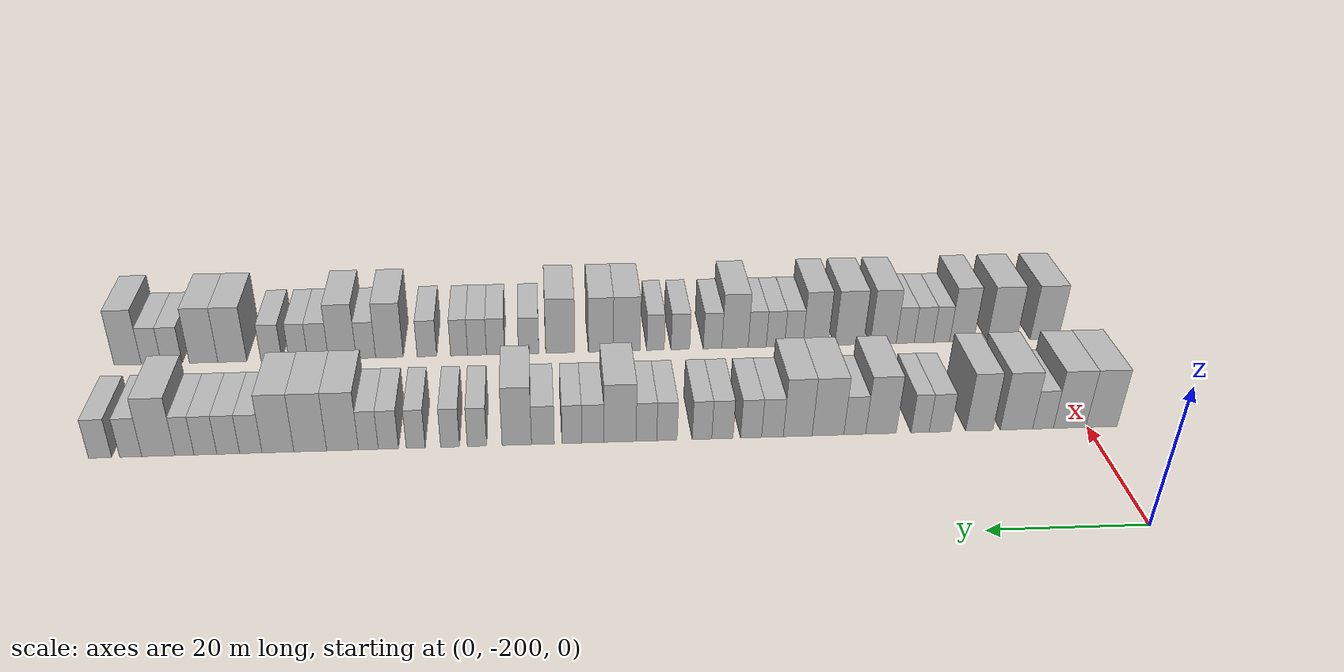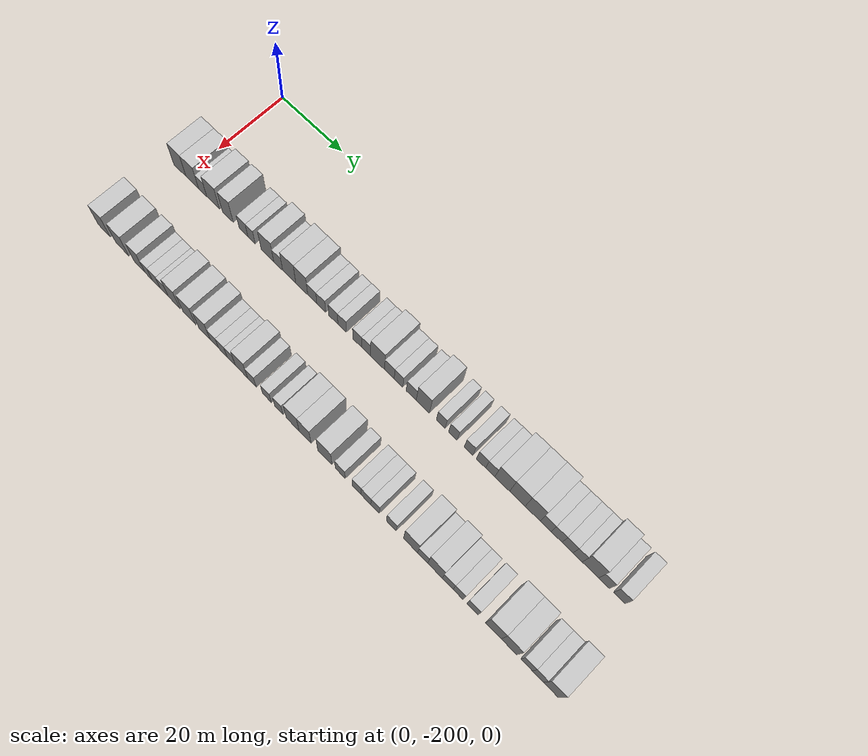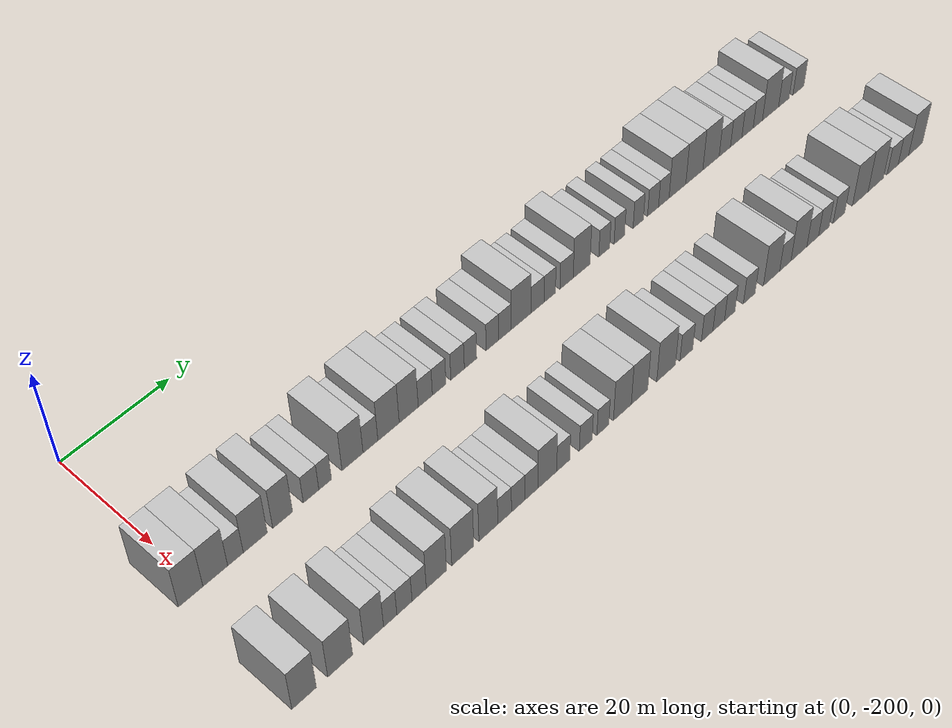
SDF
<sdf version="1.6">
 <world name="default">
  <model name="building_1">
   <static>1</static>
   <pose>25.0000 -201.8556 0 0.000000 0.000000 0.000000</pose>
   <link name="link">
    <pose>0 0 4.50 0 0 0</pose>
    <collision name="collision"><geometry><box><size>10.0000 4.2888 9.0000</size></box></geometry></collision>
    <visual name="visual">
     <cast_shadows>0</cast_shadows>
     <geometry><box><size>10.0000 4.2888 9.0000</size></box></geometry>
     <material>
      <script>
       <uri>model://HANNAS_wall/materials/scripts</uri>
       <uri>model://HANNAS_wall/materials/textures</uri>
       <name>vrc/HANNAS_wall</name>
      </script>
     </material>
    </visual>
   </link>
  </model>
  <model name="building_2">
   <static>1</static>
   <pose>25.0000 -197.5242 0 0.000000 0.000000 0.000000</pose>
   <link name="link">
    <pose>0 0 4.50 0 0 0</pose>
    <collision name="collision"><geometry><box><size>10.0000 4.3739 9.0000</size></box></geometry></collision>
    <visual name="visual">
     <cast_shadows>0</cast_shadows>
     <geometry><box><size>10.0000 4.3739 9.0000</size></box></geometry>
     <material>
      <script>
       <uri>model://HANNAS_wall/materials/scripts</uri>
       <uri>model://HANNAS_wall/materials/textures</uri>
       <name>vrc/HANNAS_wall</name>
      </script>
     </material>
    </visual>
   </link>
  </model>
  <model name="building_3">
   <static>1</static>
   <pose>25.0000 -193.9371 0 0.000000 0.000000 0.000000</pose>
   <link name="link">
    <pose>0 0 3.00 0 0 0</pose>
    <collision name="collision"><geometry><box><size>10.0000 2.8003 6.0000</size></box></geometry></collision>
    <visual name="visual">
     <cast_shadows>0</cast_shadows>
     <geometry><box><size>10.0000 2.8003 6.0000</size></box></geometry>
     <material>
      <script>
       <uri>model://HANNAS_wall/materials/scripts</uri>
       <uri>model://HANNAS_wall/materials/textures</uri>
       <name>vrc/HANNAS_wall</name>
      </script>
     </material>
    </visual>
   </link>
  </model>
  <model name="building_4">
   <static>1</static>
   <pose>25.0000 -190.3591 0 0.000000 0.000000 0.000000</pose>
   <link name="link">
    <pose>0 0 4.50 0 0 0</pose>
    <collision name="collision"><geometry><box><size>10.0000 4.3556 9.0000</size></box></geometry></collision>
    <visual name="visual">
     <cast_shadows>0</cast_shadows>
     <geometry><box><size>10.0000 4.3556 9.0000</size></box></geometry>
     <material>
      <script>
       <uri>model://HANNAS_wall/materials/scripts</uri>
       <uri>model://HANNAS_wall/materials/textures</uri>
       <name>vrc/HANNAS_wall</name>
      </script>
     </material>
    </visual>
   </link>
  </model>
  <model name="building_5">
   <static>1</static>
   <pose>25.0000 -185.3532 0 0.000000 0.000000 0.000000</pose>
   <link name="link">
    <pose>0 0 4.50 0 0 0</pose>
    <collision name="collision"><geometry><box><size>10.0000 3.6562 9.0000</size></box></geometry></collision>
    <visual name="visual">
     <cast_shadows>0</cast_shadows>
     <geometry><box><size>10.0000 3.6562 9.0000</size></box></geometry>
     <material>
      <script>
       <uri>model://HANNAS_wall/materials/scripts</uri>
       <uri>model://HANNAS_wall/materials/textures</uri>
       <name>vrc/HANNAS_wall</name>
      </script>
     </material>
    </visual>
   </link>
  </model>
  <model name="building_6">
   <static>1</static>
   <pose>25.0000 -180.0597 0 0.000000 0.000000 0.000000</pose>
   <link name="link">
    <pose>0 0 3.00 0 0 0</pose>
    <collision name="collision"><geometry><box><size>10.0000 2.9308 6.0000</size></box></geometry></collision>
    <visual name="visual">
     <cast_shadows>0</cast_shadows>
     <geometry><box><size>10.0000 2.9308 6.0000</size></box></geometry>
     <material>
      <script>
       <uri>model://HANNAS_wall/materials/scripts</uri>
       <uri>model://HANNAS_wall/materials/textures</uri>
       <name>vrc/HANNAS_wall</name>
      </script>
     </material>
    </visual>
   </link>
  </model>
  <model name="building_7">
   <static>1</static>
   <pose>25.0000 -177.3900 0 0.000000 0.000000 0.000000</pose>
   <link name="link">
    <pose>0 0 3.00 0 0 0</pose>
    <collision name="collision"><geometry><box><size>10.0000 2.4087 6.0000</size></box></geometry></collision>
    <visual name="visual">
     <cast_shadows>0</cast_shadows>
     <geometry><box><size>10.0000 2.4087 6.0000</size></box></geometry>
     <material>
      <script>
       <uri>model://HANNAS_wall/materials/scripts</uri>
       <uri>model://HANNAS_wall/materials/textures</uri>
       <name>vrc/HANNAS_wall</name>
      </script>
     </material>
    </visual>
   </link>
  </model>
  <model name="building_8">
   <static>1</static>
   <pose>25.0000 -172.1442 0 0.000000 0.000000 0.000000</pose>
   <link name="link">
    <pose>0 0 4.50 0 0 0</pose>
    <collision name="collision"><geometry><box><size>10.0000 4.0828 9.0000</size></box></geometry></collision>
    <visual name="visual">
     <cast_shadows>0</cast_shadows>
     <geometry><box><size>10.0000 4.0828 9.0000</size></box></geometry>
     <material>
      <script>
       <uri>model://HANNAS_wall/materials/scripts</uri>
       <uri>model://HANNAS_wall/materials/textures</uri>
       <name>vrc/HANNAS_wall</name>
      </script>
     </material>
    </visual>
   </link>
  </model>
  <model name="building_9">
   <static>1</static>
   <pose>25.0000 -168.6496 0 0.000000 0.000000 0.000000</pose>
   <link name="link">
    <pose>0 0 3.00 0 0 0</pose>
    <collision name="collision"><geometry><box><size>10.0000 2.9065 6.0000</size></box></geometry></collision>
    <visual name="visual">
     <cast_shadows>0</cast_shadows>
     <geometry><box><size>10.0000 2.9065 6.0000</size></box></geometry>
     <material>
      <script>
       <uri>model://HANNAS_wall/materials/scripts</uri>
       <uri>model://HANNAS_wall/materials/textures</uri>
       <name>vrc/HANNAS_wall</name>
      </script>
     </material>
    </visual>
   </link>
  </model>
  <model name="building_10">
   <static>1</static>
   <pose>25.0000 -165.0772 0 0.000000 0.000000 0.000000</pose>
   <link name="link">
    <pose>0 0 4.50 0 0 0</pose>
    <collision name="collision"><geometry><box><size>10.0000 4.2381 9.0000</size></box></geometry></collision>
    <visual name="visual">
     <cast_shadows>0</cast_shadows>
     <geometry><box><size>10.0000 4.2381 9.0000</size></box></geometry>
     <material>
      <script>
       <uri>model://HANNAS_wall/materials/scripts</uri>
       <uri>model://HANNAS_wall/materials/textures</uri>
       <name>vrc/HANNAS_wall</name>
      </script>
     </material>
    </visual>
   </link>
  </model>
  <model name="building_11">
   <static>1</static>
   <pose>25.0000 -161.0481 0 0.000000 0.000000 0.000000</pose>
   <link name="link">
    <pose>0 0 4.50 0 0 0</pose>
    <collision name="collision"><geometry><box><size>10.0000 3.8203 9.0000</size></box></geometry></collision>
    <visual name="visual">
     <cast_shadows>0</cast_shadows>
     <geometry><box><size>10.0000 3.8203 9.0000</size></box></geometry>
     <material>
      <script>
       <uri>model://HANNAS_wall/materials/scripts</uri>
       <uri>model://HANNAS_wall/materials/textures</uri>
       <name>vrc/HANNAS_wall</name>
      </script>
     </material>
    </visual>
   </link>
  </model>
  <model name="building_12">
   <static>1</static>
   <pose>25.0000 -157.6958 0 0.000000 0.000000 0.000000</pose>
   <link name="link">
    <pose>0 0 3.00 0 0 0</pose>
    <collision name="collision"><geometry><box><size>10.0000 2.8843 6.0000</size></box></geometry></collision>
    <visual name="visual">
     <cast_shadows>0</cast_shadows>
     <geometry><box><size>10.0000 2.8843 6.0000</size></box></geometry>
     <material>
      <script>
       <uri>model://HANNAS_wall/materials/scripts</uri>
       <uri>model://HANNAS_wall/materials/textures</uri>
       <name>vrc/HANNAS_wall</name>
      </script>
     </material>
    </visual>
   </link>
  </model>
  <model name="building_13">
   <static>1</static>
   <pose>25.0000 -154.8604 0 0.000000 0.000000 0.000000</pose>
   <link name="link">
    <pose>0 0 3.00 0 0 0</pose>
    <collision name="collision"><geometry><box><size>10.0000 2.7866 6.0000</size></box></geometry></collision>
    <visual name="visual">
     <cast_shadows>0</cast_shadows>
     <geometry><box><size>10.0000 2.7866 6.0000</size></box></geometry>
     <material>
      <script>
       <uri>model://HANNAS_wall/materials/scripts</uri>
       <uri>model://HANNAS_wall/materials/textures</uri>
       <name>vrc/HANNAS_wall</name>
      </script>
     </material>
    </visual>
   </link>
  </model>
  <model name="building_14">
   <static>1</static>
   <pose>25.0000 -151.0621 0 0.000000 0.000000 0.000000</pose>
   <link name="link">
    <pose>0 0 3.00 0 0 0</pose>
    <collision name="collision"><geometry><box><size>10.0000 2.8099 6.0000</size></box></geometry></collision>
    <visual name="visual">
     <cast_shadows>0</cast_shadows>
     <geometry><box><size>10.0000 2.8099 6.0000</size></box></geometry>
     <material>
      <script>
       <uri>model://HANNAS_wall/materials/scripts</uri>
       <uri>model://HANNAS_wall/materials/textures</uri>
       <name>vrc/HANNAS_wall</name>
      </script>
     </material>
    </visual>
   </link>
  </model>
  <model name="building_15">
   <static>1</static>
   <pose>25.0000 -148.3622 0 0.000000 0.000000 0.000000</pose>
   <link name="link">
    <pose>0 0 3.00 0 0 0</pose>
    <collision name="collision"><geometry><box><size>10.0000 2.5898 6.0000</size></box></geometry></collision>
    <visual name="visual">
     <cast_shadows>0</cast_shadows>
     <geometry><box><size>10.0000 2.5898 6.0000</size></box></geometry>
     <material>
      <script>
       <uri>model://HANNAS_wall/materials/scripts</uri>
       <uri>model://HANNAS_wall/materials/textures</uri>
       <name>vrc/HANNAS_wall</name>
      </script>
     </material>
    </visual>
   </link>
  </model>
  <model name="building_16">
   <static>1</static>
   <pose>25.0000 -143.7237 0 0.000000 0.000000 0.000000</pose>
   <link name="link">
    <pose>0 0 3.00 0 0 0</pose>
    <collision name="collision"><geometry><box><size>10.0000 2.6872 6.0000</size></box></geometry></collision>
    <visual name="visual">
     <cast_shadows>0</cast_shadows>
     <geometry><box><size>10.0000 2.6872 6.0000</size></box></geometry>
     <material>
      <script>
       <uri>model://HANNAS_wall/materials/scripts</uri>
       <uri>model://HANNAS_wall/materials/textures</uri>
       <name>vrc/HANNAS_wall</name>
      </script>
     </material>
    </visual>
   </link>
  </model>
  <model name="building_17">
   <static>1</static>
   <pose>25.0000 -141.0242 0 0.000000 0.000000 0.000000</pose>
   <link name="link">
    <pose>0 0 3.00 0 0 0</pose>
    <collision name="collision"><geometry><box><size>10.0000 2.7119 6.0000</size></box></geometry></collision>
    <visual name="visual">
     <cast_shadows>0</cast_shadows>
     <geometry><box><size>10.0000 2.7119 6.0000</size></box></geometry>
     <material>
      <script>
       <uri>model://HANNAS_wall/materials/scripts</uri>
       <uri>model://HANNAS_wall/materials/textures</uri>
       <name>vrc/HANNAS_wall</name>
      </script>
     </material>
    </visual>
   </link>
  </model>
  <model name="building_18">
   <static>1</static>
   <pose>25.0000 -137.5453 0 0.000000 0.000000 0.000000</pose>
   <link name="link">
    <pose>0 0 4.50 0 0 0</pose>
    <collision name="collision"><geometry><box><size>10.0000 4.2459 9.0000</size></box></geometry></collision>
    <visual name="visual">
     <cast_shadows>0</cast_shadows>
     <geometry><box><size>10.0000 4.2459 9.0000</size></box></geometry>
     <material>
      <script>
       <uri>model://HANNAS_wall/materials/scripts</uri>
       <uri>model://HANNAS_wall/materials/textures</uri>
       <name>vrc/HANNAS_wall</name>
      </script>
     </material>
    </visual>
   </link>
  </model>
  <model name="building_19">
   <static>1</static>
   <pose>25.0000 -133.9756 0 0.000000 0.000000 0.000000</pose>
   <link name="link">
    <pose>0 0 3.00 0 0 0</pose>
    <collision name="collision"><geometry><box><size>10.0000 2.8935 6.0000</size></box></geometry></collision>
    <visual name="visual">
     <cast_shadows>0</cast_shadows>
     <geometry><box><size>10.0000 2.8935 6.0000</size></box></geometry>
     <material>
      <script>
       <uri>model://HANNAS_wall/materials/scripts</uri>
       <uri>model://HANNAS_wall/materials/textures</uri>
       <name>vrc/HANNAS_wall</name>
      </script>
     </material>
    </visual>
   </link>
  </model>
  <model name="building_20">
   <static>1</static>
   <pose>25.0000 -131.2498 0 0.000000 0.000000 0.000000</pose>
   <link name="link">
    <pose>0 0 3.00 0 0 0</pose>
    <collision name="collision"><geometry><box><size>10.0000 2.5581 6.0000</size></box></geometry></collision>
    <visual name="visual">
     <cast_shadows>0</cast_shadows>
     <geometry><box><size>10.0000 2.5581 6.0000</size></box></geometry>
     <material>
      <script>
       <uri>model://HANNAS_wall/materials/scripts</uri>
       <uri>model://HANNAS_wall/materials/textures</uri>
       <name>vrc/HANNAS_wall</name>
      </script>
     </material>
    </visual>
   </link>
  </model>
  <model name="building_21">
   <static>1</static>
   <pose>25.0000 -127.4787 0 0.000000 0.000000 0.000000</pose>
   <link name="link">
    <pose>0 0 3.00 0 0 0</pose>
    <collision name="collision"><geometry><box><size>10.0000 2.9840 6.0000</size></box></geometry></collision>
    <visual name="visual">
     <cast_shadows>0</cast_shadows>
     <geometry><box><size>10.0000 2.9840 6.0000</size></box></geometry>
     <material>
      <script>
       <uri>model://HANNAS_wall/materials/scripts</uri>
       <uri>model://HANNAS_wall/materials/textures</uri>
       <name>vrc/HANNAS_wall</name>
      </script>
     </material>
    </visual>
   </link>
  </model>
  <model name="building_22">
   <static>1</static>
   <pose>25.0000 -124.0685 0 0.000000 0.000000 0.000000</pose>
   <link name="link">
    <pose>0 0 4.50 0 0 0</pose>
    <collision name="collision"><geometry><box><size>10.0000 3.8363 9.0000</size></box></geometry></collision>
    <visual name="visual">
     <cast_shadows>0</cast_shadows>
     <geometry><box><size>10.0000 3.8363 9.0000</size></box></geometry>
     <material>
      <script>
       <uri>model://HANNAS_wall/materials/scripts</uri>
       <uri>model://HANNAS_wall/materials/textures</uri>
       <name>vrc/HANNAS_wall</name>
      </script>
     </material>
    </visual>
   </link>
  </model>
  <model name="building_23">
   <static>1</static>
   <pose>25.0000 -118.8895 0 0.000000 0.000000 0.000000</pose>
   <link name="link">
    <pose>0 0 3.00 0 0 0</pose>
    <collision name="collision"><geometry><box><size>10.0000 2.5217 6.0000</size></box></geometry></collision>
    <visual name="visual">
     <cast_shadows>0</cast_shadows>
     <geometry><box><size>10.0000 2.5217 6.0000</size></box></geometry>
     <material>
      <script>
       <uri>model://HANNAS_wall/materials/scripts</uri>
       <uri>model://HANNAS_wall/materials/textures</uri>
       <name>vrc/HANNAS_wall</name>
      </script>
     </material>
    </visual>
   </link>
  </model>
  <model name="building_24">
   <static>1</static>
   <pose>25.0000 -115.3926 0 0.000000 0.000000 0.000000</pose>
   <link name="link">
    <pose>0 0 3.00 0 0 0</pose>
    <collision name="collision"><geometry><box><size>10.0000 2.4723 6.0000</size></box></geometry></collision>
    <visual name="visual">
     <cast_shadows>0</cast_shadows>
     <geometry><box><size>10.0000 2.4723 6.0000</size></box></geometry>
     <material>
      <script>
       <uri>model://HANNAS_wall/materials/scripts</uri>
       <uri>model://HANNAS_wall/materials/textures</uri>
       <name>vrc/HANNAS_wall</name>
      </script>
     </material>
    </visual>
   </link>
  </model>
  <model name="building_25">
   <static>1</static>
   <pose>25.0000 -110.9321 0 0.000000 0.000000 0.000000</pose>
   <link name="link">
    <pose>0 0 3.00 0 0 0</pose>
    <collision name="collision"><geometry><box><size>10.0000 2.4486 6.0000</size></box></geometry></collision>
    <visual name="visual">
     <cast_shadows>0</cast_shadows>
     <geometry><box><size>10.0000 2.4486 6.0000</size></box></geometry>
     <material>
      <script>
       <uri>model://HANNAS_wall/materials/scripts</uri>
       <uri>model://HANNAS_wall/materials/textures</uri>
       <name>vrc/HANNAS_wall</name>
      </script>
     </material>
    </visual>
   </link>
  </model>
  <model name="building_26">
   <static>1</static>
   <pose>25.0000 -107.3968 0 0.000000 0.000000 0.000000</pose>
   <link name="link">
    <pose>0 0 3.00 0 0 0</pose>
    <collision name="collision"><geometry><box><size>10.0000 2.6221 6.0000</size></box></geometry></collision>
    <visual name="visual">
     <cast_shadows>0</cast_shadows>
     <geometry><box><size>10.0000 2.6221 6.0000</size></box></geometry>
     <material>
      <script>
       <uri>model://HANNAS_wall/materials/scripts</uri>
       <uri>model://HANNAS_wall/materials/textures</uri>
       <name>vrc/HANNAS_wall</name>
      </script>
     </material>
    </visual>
   </link>
  </model>
  <model name="building_27">
   <static>1</static>
   <pose>25.0000 -104.8134 0 0.000000 0.000000 0.000000</pose>
   <link name="link">
    <pose>0 0 3.00 0 0 0</pose>
    <collision name="collision"><geometry><box><size>10.0000 2.5448 6.0000</size></box></geometry></collision>
    <visual name="visual">
     <cast_shadows>0</cast_shadows>
     <geometry><box><size>10.0000 2.5448 6.0000</size></box></geometry>
     <material>
      <script>
       <uri>model://HANNAS_wall/materials/scripts</uri>
       <uri>model://HANNAS_wall/materials/textures</uri>
       <name>vrc/HANNAS_wall</name>
      </script>
     </material>
    </visual>
   </link>
  </model>
  <model name="building_28">
   <static>1</static>
   <pose>25.0000 -101.4915 0 0.000000 0.000000 0.000000</pose>
   <link name="link">
    <pose>0 0 4.50 0 0 0</pose>
    <collision name="collision"><geometry><box><size>10.0000 4.0988 9.0000</size></box></geometry></collision>
    <visual name="visual">
     <cast_shadows>0</cast_shadows>
     <geometry><box><size>10.0000 4.0988 9.0000</size></box></geometry>
     <material>
      <script>
       <uri>model://HANNAS_wall/materials/scripts</uri>
       <uri>model://HANNAS_wall/materials/textures</uri>
       <name>vrc/HANNAS_wall</name>
      </script>
     </material>
    </visual>
   </link>
  </model>
  <model name="building_29">
   <static>1</static>
   <pose>25.0000 -97.3312 0 0.000000 0.000000 0.000000</pose>
   <link name="link">
    <pose>0 0 4.50 0 0 0</pose>
    <collision name="collision"><geometry><box><size>10.0000 4.2218 9.0000</size></box></geometry></collision>
    <visual name="visual">
     <cast_shadows>0</cast_shadows>
     <geometry><box><size>10.0000 4.2218 9.0000</size></box></geometry>
     <material>
      <script>
       <uri>model://HANNAS_wall/materials/scripts</uri>
       <uri>model://HANNAS_wall/materials/textures</uri>
       <name>vrc/HANNAS_wall</name>
      </script>
     </material>
    </visual>
   </link>
  </model>
  <model name="building_30">
   <static>1</static>
   <pose>25.0000 -93.1748 0 0.000000 0.000000 0.000000</pose>
   <link name="link">
    <pose>0 0 4.50 0 0 0</pose>
    <collision name="collision"><geometry><box><size>10.0000 4.0911 9.0000</size></box></geometry></collision>
    <visual name="visual">
     <cast_shadows>0</cast_shadows>
     <geometry><box><size>10.0000 4.0911 9.0000</size></box></geometry>
     <material>
      <script>
       <uri>model://HANNAS_wall/materials/scripts</uri>
       <uri>model://HANNAS_wall/materials/textures</uri>
       <name>vrc/HANNAS_wall</name>
      </script>
     </material>
    </visual>
   </link>
  </model>
  <model name="building_31">
   <static>1</static>
   <pose>25.0000 -89.6889 0 0.000000 0.000000 0.000000</pose>
   <link name="link">
    <pose>0 0 3.00 0 0 0</pose>
    <collision name="collision"><geometry><box><size>10.0000 2.8806 6.0000</size></box></geometry></collision>
    <visual name="visual">
     <cast_shadows>0</cast_shadows>
     <geometry><box><size>10.0000 2.8806 6.0000</size></box></geometry>
     <material>
      <script>
       <uri>model://HANNAS_wall/materials/scripts</uri>
       <uri>model://HANNAS_wall/materials/textures</uri>
       <name>vrc/HANNAS_wall</name>
      </script>
     </material>
    </visual>
   </link>
  </model>
  <model name="building_32">
   <static>1</static>
   <pose>25.0000 -86.7943 0 0.000000 0.000000 0.000000</pose>
   <link name="link">
    <pose>0 0 3.00 0 0 0</pose>
    <collision name="collision"><geometry><box><size>10.0000 2.9087 6.0000</size></box></geometry></collision>
    <visual name="visual">
     <cast_shadows>0</cast_shadows>
     <geometry><box><size>10.0000 2.9087 6.0000</size></box></geometry>
     <material>
      <script>
       <uri>model://HANNAS_wall/materials/scripts</uri>
       <uri>model://HANNAS_wall/materials/textures</uri>
       <name>vrc/HANNAS_wall</name>
      </script>
     </material>
    </visual>
   </link>
  </model>
  <model name="building_33">
   <static>1</static>
   <pose>25.0000 -83.8854 0 0.000000 0.000000 0.000000</pose>
   <link name="link">
    <pose>0 0 3.00 0 0 0</pose>
    <collision name="collision"><geometry><box><size>10.0000 2.9092 6.0000</size></box></geometry></collision>
    <visual name="visual">
     <cast_shadows>0</cast_shadows>
     <geometry><box><size>10.0000 2.9092 6.0000</size></box></geometry>
     <material>
      <script>
       <uri>model://HANNAS_wall/materials/scripts</uri>
       <uri>model://HANNAS_wall/materials/textures</uri>
       <name>vrc/HANNAS_wall</name>
      </script>
     </material>
    </visual>
   </link>
  </model>
  <model name="building_34">
   <static>1</static>
   <pose>25.0000 -81.2215 0 0.000000 0.000000 0.000000</pose>
   <link name="link">
    <pose>0 0 3.00 0 0 0</pose>
    <collision name="collision"><geometry><box><size>10.0000 2.4186 6.0000</size></box></geometry></collision>
    <visual name="visual">
     <cast_shadows>0</cast_shadows>
     <geometry><box><size>10.0000 2.4186 6.0000</size></box></geometry>
     <material>
      <script>
       <uri>model://HANNAS_wall/materials/scripts</uri>
       <uri>model://HANNAS_wall/materials/textures</uri>
       <name>vrc/HANNAS_wall</name>
      </script>
     </material>
    </visual>
   </link>
  </model>
  <model name="building_35">
   <static>1</static>
   <pose>25.0000 -77.8905 0 0.000000 0.000000 0.000000</pose>
   <link name="link">
    <pose>0 0 4.50 0 0 0</pose>
    <collision name="collision"><geometry><box><size>10.0000 4.2435 9.0000</size></box></geometry></collision>
    <visual name="visual">
     <cast_shadows>0</cast_shadows>
     <geometry><box><size>10.0000 4.2435 9.0000</size></box></geometry>
     <material>
      <script>
       <uri>model://HANNAS_wall/materials/scripts</uri>
       <uri>model://HANNAS_wall/materials/textures</uri>
       <name>vrc/HANNAS_wall</name>
      </script>
     </material>
    </visual>
   </link>
  </model>
  <model name="building_36">
   <static>1</static>
   <pose>25.0000 -74.3643 0 0.000000 0.000000 0.000000</pose>
   <link name="link">
    <pose>0 0 3.00 0 0 0</pose>
    <collision name="collision"><geometry><box><size>10.0000 2.8089 6.0000</size></box></geometry></collision>
    <visual name="visual">
     <cast_shadows>0</cast_shadows>
     <geometry><box><size>10.0000 2.8089 6.0000</size></box></geometry>
     <material>
      <script>
       <uri>model://HANNAS_wall/materials/scripts</uri>
       <uri>model://HANNAS_wall/materials/textures</uri>
       <name>vrc/HANNAS_wall</name>
      </script>
     </material>
    </visual>
   </link>
  </model>
  <model name="building_37">
   <static>1</static>
   <pose>25.0000 -70.4836 0 0.000000 0.000000 0.000000</pose>
   <link name="link">
    <pose>0 0 3.00 0 0 0</pose>
    <collision name="collision"><geometry><box><size>10.0000 2.9524 6.0000</size></box></geometry></collision>
    <visual name="visual">
     <cast_shadows>0</cast_shadows>
     <geometry><box><size>10.0000 2.9524 6.0000</size></box></geometry>
     <material>
      <script>
       <uri>model://HANNAS_wall/materials/scripts</uri>
       <uri>model://HANNAS_wall/materials/textures</uri>
       <name>vrc/HANNAS_wall</name>
      </script>
     </material>
    </visual>
   </link>
  </model>
  <model name="building_109">
   <static>1</static>
   <pose>47.0000 -201.8679 0 0.000000 0.000000 0.000000</pose>
   <link name="link">
    <pose>0 0 4.50 0 0 0</pose>
    <collision name="collision"><geometry><box><size>10.0000 4.2642 9.0000</size></box></geometry></collision>
    <visual name="visual">
     <cast_shadows>0</cast_shadows>
     <geometry><box><size>10.0000 4.2642 9.0000</size></box></geometry>
     <material>
      <script>
       <uri>model://HANNAS_wall/materials/scripts</uri>
       <uri>model://HANNAS_wall/materials/textures</uri>
       <name>vrc/HANNAS_wall</name>
      </script>
     </material>
    </visual>
   </link>
  </model>
  <model name="building_110">
   <static>1</static>
   <pose>47.0000 -195.5158 0 0.000000 0.000000 0.000000</pose>
   <link name="link">
    <pose>0 0 4.50 0 0 0</pose>
    <collision name="collision"><geometry><box><size>10.0000 4.4401 9.0000</size></box></geometry></collision>
    <visual name="visual">
     <cast_shadows>0</cast_shadows>
     <geometry><box><size>10.0000 4.4401 9.0000</size></box></geometry>
     <material>
      <script>
       <uri>model://HANNAS_wall/materials/scripts</uri>
       <uri>model://HANNAS_wall/materials/textures</uri>
       <name>vrc/HANNAS_wall</name>
      </script>
     </material>
    </visual>
   </link>
  </model>
  <model name="building_111">
   <static>1</static>
   <pose>47.0000 -189.4886 0 0.000000 0.000000 0.000000</pose>
   <link name="link">
    <pose>0 0 4.50 0 0 0</pose>
    <collision name="collision"><geometry><box><size>10.0000 3.6141 9.0000</size></box></geometry></collision>
    <visual name="visual">
     <cast_shadows>0</cast_shadows>
     <geometry><box><size>10.0000 3.6141 9.0000</size></box></geometry>
     <material>
      <script>
       <uri>model://HANNAS_wall/materials/scripts</uri>
       <uri>model://HANNAS_wall/materials/textures</uri>
       <name>vrc/HANNAS_wall</name>
      </script>
     </material>
    </visual>
   </link>
  </model>
  <model name="building_112">
   <static>1</static>
   <pose>47.0000 -186.4586 0 0.000000 0.000000 0.000000</pose>
   <link name="link">
    <pose>0 0 3.00 0 0 0</pose>
    <collision name="collision"><geometry><box><size>10.0000 2.4461 6.0000</size></box></geometry></collision>
    <visual name="visual">
     <cast_shadows>0</cast_shadows>
     <geometry><box><size>10.0000 2.4461 6.0000</size></box></geometry>
     <material>
      <script>
       <uri>model://HANNAS_wall/materials/scripts</uri>
       <uri>model://HANNAS_wall/materials/textures</uri>
       <name>vrc/HANNAS_wall</name>
      </script>
     </material>
    </visual>
   </link>
  </model>
  <model name="building_113">
   <static>1</static>
   <pose>47.0000 -183.8167 0 0.000000 0.000000 0.000000</pose>
   <link name="link">
    <pose>0 0 3.00 0 0 0</pose>
    <collision name="collision"><geometry><box><size>10.0000 2.8376 6.0000</size></box></geometry></collision>
    <visual name="visual">
     <cast_shadows>0</cast_shadows>
     <geometry><box><size>10.0000 2.8376 6.0000</size></box></geometry>
     <material>
      <script>
       <uri>model://HANNAS_wall/materials/scripts</uri>
       <uri>model://HANNAS_wall/materials/textures</uri>
       <name>vrc/HANNAS_wall</name>
      </script>
     </material>
    </visual>
   </link>
  </model>
  <model name="building_114">
   <static>1</static>
   <pose>47.0000 -181.0642 0 0.000000 0.000000 0.000000</pose>
   <link name="link">
    <pose>0 0 3.00 0 0 0</pose>
    <collision name="collision"><geometry><box><size>10.0000 2.6674 6.0000</size></box></geometry></collision>
    <visual name="visual">
     <cast_shadows>0</cast_shadows>
     <geometry><box><size>10.0000 2.6674 6.0000</size></box></geometry>
     <material>
      <script>
       <uri>model://HANNAS_wall/materials/scripts</uri>
       <uri>model://HANNAS_wall/materials/textures</uri>
       <name>vrc/HANNAS_wall</name>
      </script>
     </material>
    </visual>
   </link>
  </model>
  <model name="building_115">
   <static>1</static>
   <pose>47.0000 -177.8053 0 0.000000 0.000000 0.000000</pose>
   <link name="link">
    <pose>0 0 4.50 0 0 0</pose>
    <collision name="collision"><geometry><box><size>10.0000 3.8505 9.0000</size></box></geometry></collision>
    <visual name="visual">
     <cast_shadows>0</cast_shadows>
     <geometry><box><size>10.0000 3.8505 9.0000</size></box></geometry>
     <material>
      <script>
       <uri>model://HANNAS_wall/materials/scripts</uri>
       <uri>model://HANNAS_wall/materials/textures</uri>
       <name>vrc/HANNAS_wall</name>
      </script>
     </material>
    </visual>
   </link>
  </model>
  <model name="building_116">
   <static>1</static>
   <pose>47.0000 -172.7529 0 0.000000 0.000000 0.000000</pose>
   <link name="link">
    <pose>0 0 4.50 0 0 0</pose>
    <collision name="collision"><geometry><box><size>10.0000 4.2542 9.0000</size></box></geometry></collision>
    <visual name="visual">
     <cast_shadows>0</cast_shadows>
     <geometry><box><size>10.0000 4.2542 9.0000</size></box></geometry>
     <material>
      <script>
       <uri>model://HANNAS_wall/materials/scripts</uri>
       <uri>model://HANNAS_wall/materials/textures</uri>
       <name>vrc/HANNAS_wall</name>
      </script>
     </material>
    </visual>
   </link>
  </model>
  <model name="building_117">
   <static>1</static>
   <pose>47.0000 -167.7656 0 0.000000 0.000000 0.000000</pose>
   <link name="link">
    <pose>0 0 4.50 0 0 0</pose>
    <collision name="collision"><geometry><box><size>10.0000 3.7204 9.0000</size></box></geometry></collision>
    <visual name="visual">
     <cast_shadows>0</cast_shadows>
     <geometry><box><size>10.0000 3.7204 9.0000</size></box></geometry>
     <material>
      <script>
       <uri>model://HANNAS_wall/materials/scripts</uri>
       <uri>model://HANNAS_wall/materials/textures</uri>
       <name>vrc/HANNAS_wall</name>
      </script>
     </material>
    </visual>
   </link>
  </model>
  <model name="building_118">
   <static>1</static>
   <pose>47.0000 -164.5443 0 0.000000 0.000000 0.000000</pose>
   <link name="link">
    <pose>0 0 3.00 0 0 0</pose>
    <collision name="collision"><geometry><box><size>10.0000 2.7222 6.0000</size></box></geometry></collision>
    <visual name="visual">
     <cast_shadows>0</cast_shadows>
     <geometry><box><size>10.0000 2.7222 6.0000</size></box></geometry>
     <material>
      <script>
       <uri>model://HANNAS_wall/materials/scripts</uri>
       <uri>model://HANNAS_wall/materials/textures</uri>
       <name>vrc/HANNAS_wall</name>
      </script>
     </material>
    </visual>
   </link>
  </model>
  <model name="building_119">
   <static>1</static>
   <pose>47.0000 -161.8322 0 0.000000 0.000000 0.000000</pose>
   <link name="link">
    <pose>0 0 3.00 0 0 0</pose>
    <collision name="collision"><geometry><box><size>10.0000 2.7018 6.0000</size></box></geometry></collision>
    <visual name="visual">
     <cast_shadows>0</cast_shadows>
     <geometry><box><size>10.0000 2.7018 6.0000</size></box></geometry>
     <material>
      <script>
       <uri>model://HANNAS_wall/materials/scripts</uri>
       <uri>model://HANNAS_wall/materials/textures</uri>
       <name>vrc/HANNAS_wall</name>
      </script>
     </material>
    </visual>
   </link>
  </model>
  <model name="building_120">
   <static>1</static>
   <pose>47.0000 -159.1504 0 0.000000 0.000000 0.000000</pose>
   <link name="link">
    <pose>0 0 3.00 0 0 0</pose>
    <collision name="collision"><geometry><box><size>10.0000 2.6619 6.0000</size></box></geometry></collision>
    <visual name="visual">
     <cast_shadows>0</cast_shadows>
     <geometry><box><size>10.0000 2.6619 6.0000</size></box></geometry>
     <material>
      <script>
       <uri>model://HANNAS_wall/materials/scripts</uri>
       <uri>model://HANNAS_wall/materials/textures</uri>
       <name>vrc/HANNAS_wall</name>
      </script>
     </material>
    </visual>
   </link>
  </model>
  <model name="building_121">
   <static>1</static>
   <pose>47.0000 -155.8913 0 0.000000 0.000000 0.000000</pose>
   <link name="link">
    <pose>0 0 4.50 0 0 0</pose>
    <collision name="collision"><geometry><box><size>10.0000 3.8564 9.0000</size></box></geometry></collision>
    <visual name="visual">
     <cast_shadows>0</cast_shadows>
     <geometry><box><size>10.0000 3.8564 9.0000</size></box></geometry>
     <material>
      <script>
       <uri>model://HANNAS_wall/materials/scripts</uri>
       <uri>model://HANNAS_wall/materials/textures</uri>
       <name>vrc/HANNAS_wall</name>
      </script>
     </material>
    </visual>
   </link>
  </model>
  <model name="building_122">
   <static>1</static>
   <pose>47.0000 -152.5996 0 0.000000 0.000000 0.000000</pose>
   <link name="link">
    <pose>0 0 3.00 0 0 0</pose>
    <collision name="collision"><geometry><box><size>10.0000 2.7269 6.0000</size></box></geometry></collision>
    <visual name="visual">
     <cast_shadows>0</cast_shadows>
     <geometry><box><size>10.0000 2.7269 6.0000</size></box></geometry>
     <material>
      <script>
       <uri>model://HANNAS_wall/materials/scripts</uri>
       <uri>model://HANNAS_wall/materials/textures</uri>
       <name>vrc/HANNAS_wall</name>
      </script>
     </material>
    </visual>
   </link>
  </model>
  <model name="building_123">
   <static>1</static>
   <pose>47.0000 -147.8751 0 0.000000 0.000000 0.000000</pose>
   <link name="link">
    <pose>0 0 3.00 0 0 0</pose>
    <collision name="collision"><geometry><box><size>10.0000 2.7223 6.0000</size></box></geometry></collision>
    <visual name="visual">
     <cast_shadows>0</cast_shadows>
     <geometry><box><size>10.0000 2.7223 6.0000</size></box></geometry>
     <material>
      <script>
       <uri>model://HANNAS_wall/materials/scripts</uri>
       <uri>model://HANNAS_wall/materials/textures</uri>
       <name>vrc/HANNAS_wall</name>
      </script>
     </material>
    </visual>
   </link>
  </model>
  <model name="building_124">
   <static>1</static>
   <pose>47.0000 -144.2394 0 0.000000 0.000000 0.000000</pose>
   <link name="link">
    <pose>0 0 3.00 0 0 0</pose>
    <collision name="collision"><geometry><box><size>10.0000 2.5491 6.0000</size></box></geometry></collision>
    <visual name="visual">
     <cast_shadows>0</cast_shadows>
     <geometry><box><size>10.0000 2.5491 6.0000</size></box></geometry>
     <material>
      <script>
       <uri>model://HANNAS_wall/materials/scripts</uri>
       <uri>model://HANNAS_wall/materials/textures</uri>
       <name>vrc/HANNAS_wall</name>
      </script>
     </material>
    </visual>
   </link>
  </model>
  <model name="building_125">
   <static>1</static>
   <pose>47.0000 -140.0216 0 0.000000 0.000000 0.000000</pose>
   <link name="link">
    <pose>0 0 4.50 0 0 0</pose>
    <collision name="collision"><geometry><box><size>10.0000 3.8864 9.0000</size></box></geometry></collision>
    <visual name="visual">
     <cast_shadows>0</cast_shadows>
     <geometry><box><size>10.0000 3.8864 9.0000</size></box></geometry>
     <material>
      <script>
       <uri>model://HANNAS_wall/materials/scripts</uri>
       <uri>model://HANNAS_wall/materials/textures</uri>
       <name>vrc/HANNAS_wall</name>
      </script>
     </material>
    </visual>
   </link>
  </model>
  <model name="building_126">
   <static>1</static>
   <pose>47.0000 -136.2688 0 0.000000 0.000000 0.000000</pose>
   <link name="link">
    <pose>0 0 4.50 0 0 0</pose>
    <collision name="collision"><geometry><box><size>10.0000 3.6192 9.0000</size></box></geometry></collision>
    <visual name="visual">
     <cast_shadows>0</cast_shadows>
     <geometry><box><size>10.0000 3.6192 9.0000</size></box></geometry>
     <material>
      <script>
       <uri>model://HANNAS_wall/materials/scripts</uri>
       <uri>model://HANNAS_wall/materials/textures</uri>
       <name>vrc/HANNAS_wall</name>
      </script>
     </material>
    </visual>
   </link>
  </model>
  <model name="building_127">
   <static>1</static>
   <pose>47.0000 -130.3562 0 0.000000 0.000000 0.000000</pose>
   <link name="link">
    <pose>0 0 4.50 0 0 0</pose>
    <collision name="collision"><geometry><box><size>10.0000 4.2061 9.0000</size></box></geometry></collision>
    <visual name="visual">
     <cast_shadows>0</cast_shadows>
     <geometry><box><size>10.0000 4.2061 9.0000</size></box></geometry>
     <material>
      <script>
       <uri>model://HANNAS_wall/materials/scripts</uri>
       <uri>model://HANNAS_wall/materials/textures</uri>
       <name>vrc/HANNAS_wall</name>
      </script>
     </material>
    </visual>
   </link>
  </model>
  <model name="building_128">
   <static>1</static>
   <pose>47.0000 -125.7850 0 0.000000 0.000000 0.000000</pose>
   <link name="link">
    <pose>0 0 3.00 0 0 0</pose>
    <collision name="collision"><geometry><box><size>10.0000 2.9361 6.0000</size></box></geometry></collision>
    <visual name="visual">
     <cast_shadows>0</cast_shadows>
     <geometry><box><size>10.0000 2.9361 6.0000</size></box></geometry>
     <material>
      <script>
       <uri>model://HANNAS_wall/materials/scripts</uri>
       <uri>model://HANNAS_wall/materials/textures</uri>
       <name>vrc/HANNAS_wall</name>
      </script>
     </material>
    </visual>
   </link>
  </model>
  <model name="building_129">
   <static>1</static>
   <pose>47.0000 -120.9942 0 0.000000 0.000000 0.000000</pose>
   <link name="link">
    <pose>0 0 3.00 0 0 0</pose>
    <collision name="collision"><geometry><box><size>10.0000 2.6456 6.0000</size></box></geometry></collision>
    <visual name="visual">
     <cast_shadows>0</cast_shadows>
     <geometry><box><size>10.0000 2.6456 6.0000</size></box></geometry>
     <material>
      <script>
       <uri>model://HANNAS_wall/materials/scripts</uri>
       <uri>model://HANNAS_wall/materials/textures</uri>
       <name>vrc/HANNAS_wall</name>
      </script>
     </material>
    </visual>
   </link>
  </model>
  <model name="building_130">
   <static>1</static>
   <pose>47.0000 -118.3114 0 0.000000 0.000000 0.000000</pose>
   <link name="link">
    <pose>0 0 3.00 0 0 0</pose>
    <collision name="collision"><geometry><box><size>10.0000 2.7200 6.0000</size></box></geometry></collision>
    <visual name="visual">
     <cast_shadows>0</cast_shadows>
     <geometry><box><size>10.0000 2.7200 6.0000</size></box></geometry>
     <material>
      <script>
       <uri>model://HANNAS_wall/materials/scripts</uri>
       <uri>model://HANNAS_wall/materials/textures</uri>
       <name>vrc/HANNAS_wall</name>
      </script>
     </material>
    </visual>
   </link>
  </model>
  <model name="building_131">
   <static>1</static>
   <pose>47.0000 -115.7195 0 0.000000 0.000000 0.000000</pose>
   <link name="link">
    <pose>0 0 3.00 0 0 0</pose>
    <collision name="collision"><geometry><box><size>10.0000 2.4638 6.0000</size></box></geometry></collision>
    <visual name="visual">
     <cast_shadows>0</cast_shadows>
     <geometry><box><size>10.0000 2.4638 6.0000</size></box></geometry>
     <material>
      <script>
       <uri>model://HANNAS_wall/materials/scripts</uri>
       <uri>model://HANNAS_wall/materials/textures</uri>
       <name>vrc/HANNAS_wall</name>
      </script>
     </material>
    </visual>
   </link>
  </model>
  <model name="building_132">
   <static>1</static>
   <pose>47.0000 -111.0810 0 0.000000 0.000000 0.000000</pose>
   <link name="link">
    <pose>0 0 3.00 0 0 0</pose>
    <collision name="collision"><geometry><box><size>10.0000 2.8133 6.0000</size></box></geometry></collision>
    <visual name="visual">
     <cast_shadows>0</cast_shadows>
     <geometry><box><size>10.0000 2.8133 6.0000</size></box></geometry>
     <material>
      <script>
       <uri>model://HANNAS_wall/materials/scripts</uri>
       <uri>model://HANNAS_wall/materials/textures</uri>
       <name>vrc/HANNAS_wall</name>
      </script>
     </material>
    </visual>
   </link>
  </model>
  <model name="building_133">
   <static>1</static>
   <pose>47.0000 -105.6902 0 0.000000 0.000000 0.000000</pose>
   <link name="link">
    <pose>0 0 4.50 0 0 0</pose>
    <collision name="collision"><geometry><box><size>10.0000 3.9684 9.0000</size></box></geometry></collision>
    <visual name="visual">
     <cast_shadows>0</cast_shadows>
     <geometry><box><size>10.0000 3.9684 9.0000</size></box></geometry>
     <material>
      <script>
       <uri>model://HANNAS_wall/materials/scripts</uri>
       <uri>model://HANNAS_wall/materials/textures</uri>
       <name>vrc/HANNAS_wall</name>
      </script>
     </material>
    </visual>
   </link>
  </model>
  <model name="building_134">
   <static>1</static>
   <pose>47.0000 -102.3074 0 0.000000 0.000000 0.000000</pose>
   <link name="link">
    <pose>0 0 3.00 0 0 0</pose>
    <collision name="collision"><geometry><box><size>10.0000 2.7971 6.0000</size></box></geometry></collision>
    <visual name="visual">
     <cast_shadows>0</cast_shadows>
     <geometry><box><size>10.0000 2.7971 6.0000</size></box></geometry>
     <material>
      <script>
       <uri>model://HANNAS_wall/materials/scripts</uri>
       <uri>model://HANNAS_wall/materials/textures</uri>
       <name>vrc/HANNAS_wall</name>
      </script>
     </material>
    </visual>
   </link>
  </model>
  <model name="building_135">
   <static>1</static>
   <pose>47.0000 -98.9260 0 0.000000 0.000000 0.000000</pose>
   <link name="link">
    <pose>0 0 4.50 0 0 0</pose>
    <collision name="collision"><geometry><box><size>10.0000 3.9657 9.0000</size></box></geometry></collision>
    <visual name="visual">
     <cast_shadows>0</cast_shadows>
     <geometry><box><size>10.0000 3.9657 9.0000</size></box></geometry>
     <material>
      <script>
       <uri>model://HANNAS_wall/materials/scripts</uri>
       <uri>model://HANNAS_wall/materials/textures</uri>
       <name>vrc/HANNAS_wall</name>
      </script>
     </material>
    </visual>
   </link>
  </model>
  <model name="building_136">
   <static>1</static>
   <pose>47.0000 -95.4682 0 0.000000 0.000000 0.000000</pose>
   <link name="link">
    <pose>0 0 3.00 0 0 0</pose>
    <collision name="collision"><geometry><box><size>10.0000 2.9499 6.0000</size></box></geometry></collision>
    <visual name="visual">
     <cast_shadows>0</cast_shadows>
     <geometry><box><size>10.0000 2.9499 6.0000</size></box></geometry>
     <material>
      <script>
       <uri>model://HANNAS_wall/materials/scripts</uri>
       <uri>model://HANNAS_wall/materials/textures</uri>
       <name>vrc/HANNAS_wall</name>
      </script>
     </material>
    </visual>
   </link>
  </model>
  <model name="building_137">
   <static>1</static>
   <pose>47.0000 -92.6488 0 0.000000 0.000000 0.000000</pose>
   <link name="link">
    <pose>0 0 3.00 0 0 0</pose>
    <collision name="collision"><geometry><box><size>10.0000 2.6890 6.0000</size></box></geometry></collision>
    <visual name="visual">
     <cast_shadows>0</cast_shadows>
     <geometry><box><size>10.0000 2.6890 6.0000</size></box></geometry>
     <material>
      <script>
       <uri>model://HANNAS_wall/materials/scripts</uri>
       <uri>model://HANNAS_wall/materials/textures</uri>
       <name>vrc/HANNAS_wall</name>
      </script>
     </material>
    </visual>
   </link>
  </model>
  <model name="building_138">
   <static>1</static>
   <pose>47.0000 -88.8057 0 0.000000 0.000000 0.000000</pose>
   <link name="link">
    <pose>0 0 3.00 0 0 0</pose>
    <collision name="collision"><geometry><box><size>10.0000 2.9972 6.0000</size></box></geometry></collision>
    <visual name="visual">
     <cast_shadows>0</cast_shadows>
     <geometry><box><size>10.0000 2.9972 6.0000</size></box></geometry>
     <material>
      <script>
       <uri>model://HANNAS_wall/materials/scripts</uri>
       <uri>model://HANNAS_wall/materials/textures</uri>
       <name>vrc/HANNAS_wall</name>
      </script>
     </material>
    </visual>
   </link>
  </model>
  <model name="building_139">
   <static>1</static>
   <pose>47.0000 -83.2538 0 0.000000 0.000000 0.000000</pose>
   <link name="link">
    <pose>0 0 4.50 0 0 0</pose>
    <collision name="collision"><geometry><box><size>10.0000 4.1067 9.0000</size></box></geometry></collision>
    <visual name="visual">
     <cast_shadows>0</cast_shadows>
     <geometry><box><size>10.0000 4.1067 9.0000</size></box></geometry>
     <material>
      <script>
       <uri>model://HANNAS_wall/materials/scripts</uri>
       <uri>model://HANNAS_wall/materials/textures</uri>
       <name>vrc/HANNAS_wall</name>
      </script>
     </material>
    </visual>
   </link>
  </model>
  <model name="building_140">
   <static>1</static>
   <pose>47.0000 -79.1714 0 0.000000 0.000000 0.000000</pose>
   <link name="link">
    <pose>0 0 4.50 0 0 0</pose>
    <collision name="collision"><geometry><box><size>10.0000 4.0581 9.0000</size></box></geometry></collision>
    <visual name="visual">
     <cast_shadows>0</cast_shadows>
     <geometry><box><size>10.0000 4.0581 9.0000</size></box></geometry>
     <material>
      <script>
       <uri>model://HANNAS_wall/materials/scripts</uri>
       <uri>model://HANNAS_wall/materials/textures</uri>
       <name>vrc/HANNAS_wall</name>
      </script>
     </material>
    </visual>
   </link>
  </model>
  <model name="building_141">
   <static>1</static>
   <pose>47.0000 -74.6642 0 0.000000 0.000000 0.000000</pose>
   <link name="link">
    <pose>0 0 3.00 0 0 0</pose>
    <collision name="collision"><geometry><box><size>10.0000 2.9562 6.0000</size></box></geometry></collision>
    <visual name="visual">
     <cast_shadows>0</cast_shadows>
     <geometry><box><size>10.0000 2.9562 6.0000</size></box></geometry>
     <material>
      <script>
       <uri>model://HANNAS_wall/materials/scripts</uri>
       <uri>model://HANNAS_wall/materials/textures</uri>
       <name>vrc/HANNAS_wall</name>
      </script>
     </material>
    </visual>
   </link>
  </model>
  <model name="building_142">
   <static>1</static>
   <pose>47.0000 -71.7709 0 0.000000 0.000000 0.000000</pose>
   <link name="link">
    <pose>0 0 3.00 0 0 0</pose>
    <collision name="collision"><geometry><box><size>10.0000 2.8304 6.0000</size></box></geometry></collision>
    <visual name="visual">
     <cast_shadows>0</cast_shadows>
     <geometry><box><size>10.0000 2.8304 6.0000</size></box></geometry>
     <material>
      <script>
       <uri>model://HANNAS_wall/materials/scripts</uri>
       <uri>model://HANNAS_wall/materials/textures</uri>
       <name>vrc/HANNAS_wall</name>
      </script>
     </material>
    </visual>
   </link>
  </model>
  <model name="building_143">
   <static>1</static>
   <pose>47.0000 -68.4395 0 0.000000 0.000000 0.000000</pose>
   <link name="link">
    <pose>0 0 4.50 0 0 0</pose>
    <collision name="collision"><geometry><box><size>10.0000 3.8325 9.0000</size></box></geometry></collision>
    <visual name="visual">
     <cast_shadows>0</cast_shadows>
     <geometry><box><size>10.0000 3.8325 9.0000</size></box></geometry>
     <material>
      <script>
       <uri>model://HANNAS_wall/materials/scripts</uri>
       <uri>model://HANNAS_wall/materials/textures</uri>
       <name>vrc/HANNAS_wall</name>
      </script>
     </material>
    </visual>
   </link>
  </model>
 </world>
</sdf>
